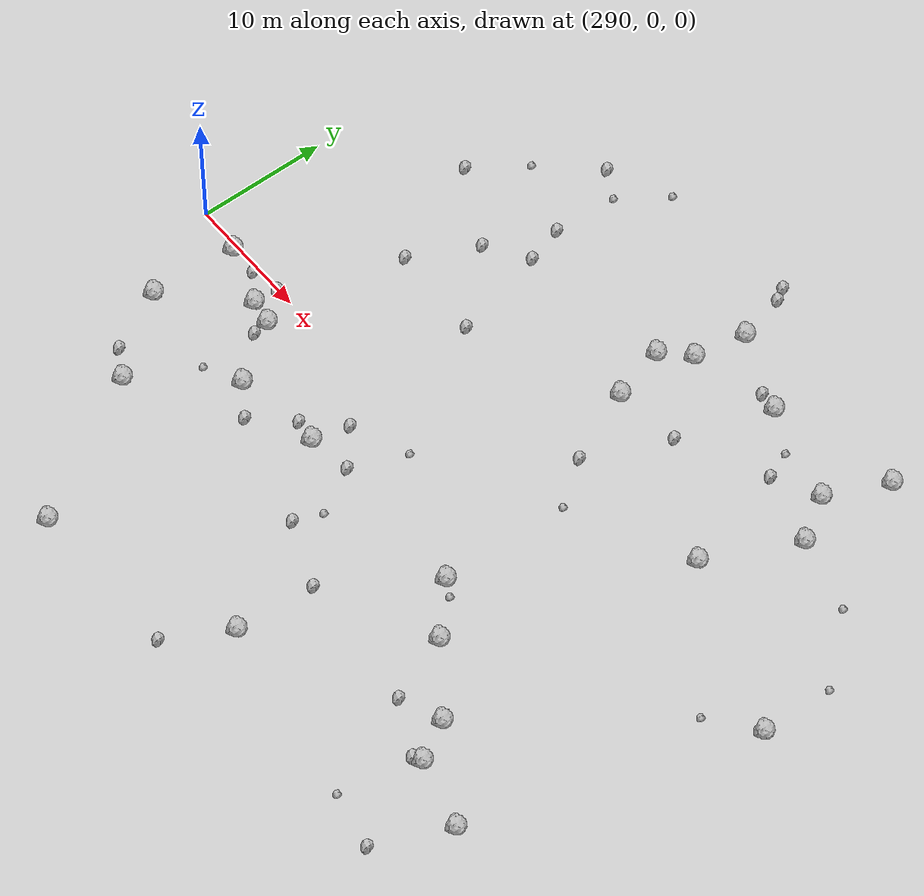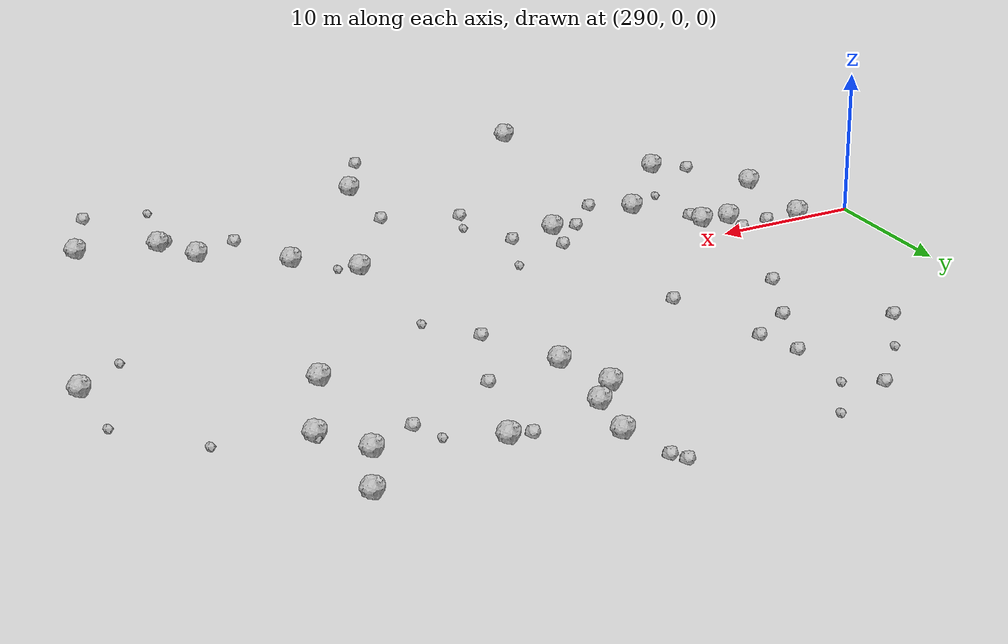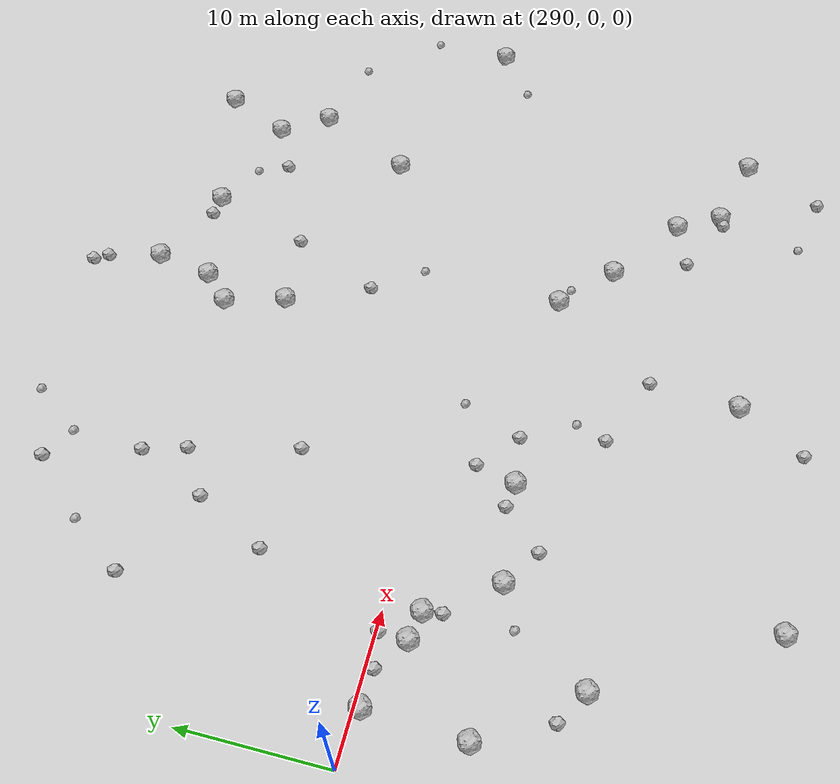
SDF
<sdf version="1.6">
 <world name="default">
  <include><uri>model://sun</uri></include>
  <model name="rock1_8_3">
   <include><uri>model://rock1</uri><pose>335.6666136029293 -15.954178938562816 0.5 0 0 0</pose></include>
  </model>
  <model name="rock1_8_4">
   <include><uri>model://rock1</uri><pose>310.4134646145215 -6.028265651254216 0.5 0 0 0</pose></include>
  </model>
  <model name="rock1_8_5">
   <include><uri>model://rock1</uri><pose>334.00836192273715 -12.984809346145191 0.5 0 0 0</pose></include>
  </model>
  <model name="rock1_8_6">
   <include><uri>model://rock1</uri><pose>304.53918171576015 -24.210401536305604 0.5 0 0 0</pose></include>
  </model>
  <model name="rock1_8_7">
   <include><uri>model://rock1</uri><pose>322.04123740355874 23.252667094722234 0.5 0 0 0</pose></include>
  </model>
  <model name="rock1_8_8">
   <include><uri>model://rock1</uri><pose>293.49518501889156 -7.1408607265561415 0.5 0 0 0</pose></include>
  </model>
  <model name="rock1_8_9">
   <include><uri>model://rock1</uri><pose>293.8379578974268 -0.4194557825747012 0.5 0 0 0</pose></include>
  </model>
  <model name="rock1_8_10">
   <include><uri>model://rock1</uri><pose>300.48617119735604 -2.396005912191491 0.5 0 0 0</pose></include>
  </model>
  <model name="rock1_8_11">
   <include><uri>model://rock1</uri><pose>328.1721205535155 20.74794014355441 0.5 0 0 0</pose></include>
  </model>
  <model name="rock1_8_12">
   <include><uri>model://rock1</uri><pose>335.8041332646007 18.5670599425996 0.5 0 0 0</pose></include>
  </model>
  <model name="rock1_8_13">
   <include><uri>model://rock1</uri><pose>347.914480547754 3.3208119104079614 0.5 0 0 0</pose></include>
  </model>
  <model name="rock1_8_14">
   <include><uri>model://rock1</uri><pose>337.89857404804786 15.312970702776042 0.5 0 0 0</pose></include>
  </model>
  <model name="rock1_8_15">
   <include><uri>model://rock1</uri><pose>328.7605475610245 -9.145805016457281 0.5 0 0 0</pose></include>
  </model>
  <model name="rock1_8_16">
   <include><uri>model://rock1</uri><pose>298.08370248366566 -13.192206783624236 0.5 0 0 0</pose></include>
  </model>
  <model name="rock1_8_17">
   <include><uri>model://rock1</uri><pose>325.2215575552092 -5.831455045808976 0.5 0 0 0</pose></include>
  </model>
  <model name="rock1_8_18">
   <include><uri>model://rock1</uri><pose>334.62132493441834 8.54561499172506 0.5 0 0 0</pose></include>
  </model>
  <model name="rock1_8_19">
   <include><uri>model://rock1</uri><pose>341.05969444690277 -17.359942002953 0.5 0 0 0</pose></include>
  </model>
  <model name="rock1_8_20">
   <include><uri>model://rock1</uri><pose>319.4129707595054 17.364490186224458 0.5 0 0 0</pose></include>
  </model>
  <model name="rock1_8_21">
   <include><uri>model://rock1</uri><pose>337.925025691945 23.135533898677515 0.5 0 0 0</pose></include>
  </model>
  <model name="rock1_8_22">
   <include><uri>model://rock1</uri><pose>298.52764459734124 -2.048492555671203 0.5 0 0 0</pose></include>
  </model>
  <model name="rock1_8_23">
   <include><uri>model://rock1</uri><pose>319.7311986374421 -19.429876372053613 0.5 0 0 0</pose></include>
  </model>
  <model name="rock1_8_24">
   <include><uri>model://rock1</uri><pose>321.27637515662536 19.268348599970402 0.5 0 0 0</pose></include>
  </model>
  <model name="rock1_8_25">
   <include><uri>model://rock1</uri><pose>303.51918156118194 -6.842801874681808 0.5 0 0 0</pose></include>
  </model>
  <model name="rock1_8_26">
   <include><uri>model://rock1</uri><pose>320.59231562671187 13.166544585929024 0.5 0 0 0</pose></include>
  </model>
  <model name="rock2_8_0">
   <include><uri>model://rock2</uri><pose>301.92998893946015 8.686437128923444 0.3 0 0 0</pose></include>
  </model>
  <model name="rock2_8_1">
   <include><uri>model://rock2</uri><pose>306.69896992833173 18.619766425760993 0.3 0 0 0</pose></include>
  </model>
  <model name="rock2_8_2">
   <include><uri>model://rock2</uri><pose>320.09358248092167 -13.264272624392586 0.3 0 0 0</pose></include>
  </model>
  <model name="rock2_8_3">
   <include><uri>model://rock2</uri><pose>298.58063065457833 -0.1237564866601879 0.3 0 0 0</pose></include>
  </model>
  <model name="rock2_8_4">
   <include><uri>model://rock2</uri><pose>300.65158411365644 -3.6601020039903496 0.3 0 0 0</pose></include>
  </model>
  <model name="rock2_8_5">
   <include><uri>model://rock2</uri><pose>325.7596406366436 13.744945371636497 0.3 0 0 0</pose></include>
  </model>
  <model name="rock2_8_6">
   <include><uri>model://rock2</uri><pose>338.57761172245415 -22.862275163656413 0.3 0 0 0</pose></include>
  </model>
  <model name="rock2_8_7">
   <include><uri>model://rock2</uri><pose>307.564866877232 15.696296366918062 0.3 0 0 0</pose></include>
  </model>
  <model name="rock2_8_8">
   <include><uri>model://rock2</uri><pose>311.0891675134499 -3.2171048711222667 0.3 0 0 0</pose></include>
  </model>
  <model name="rock2_8_9">
   <include><uri>model://rock2</uri><pose>321.070564091349 26.976942351908612 0.3 0 0 0</pose></include>
  </model>
  <model name="rock2_8_10">
   <include><uri>model://rock2</uri><pose>313.7829633358859 -5.5476418194432995 0.3 0 0 0</pose></include>
  </model>
  <model name="rock2_8_11">
   <include><uri>model://rock2</uri><pose>304.45681356767506 13.640867161434215 0.3 0 0 0</pose></include>
  </model>
  <model name="rock2_8_12">
   <include><uri>model://rock2</uri><pose>334.947129703913 -16.27591243708192 0.3 0 0 0</pose></include>
  </model>
  <model name="rock2_8_13">
   <include><uri>model://rock2</uri><pose>317.0657856115239 -24.09080870317986 0.3 0 0 0</pose></include>
  </model>
  <model name="rock2_8_14">
   <include><uri>model://rock2</uri><pose>296.28745636152877 -0.5054577600431607 0.3 0 0 0</pose></include>
  </model>
  <model name="rock2_8_15">
   <include><uri>model://rock2</uri><pose>298.234018472729 16.9792794529262 0.3 0 0 0</pose></include>
  </model>
  <model name="rock2_8_16">
   <include><uri>model://rock2</uri><pose>308.6214468374648 -5.79122141691505 0.3 0 0 0</pose></include>
  </model>
  <model name="rock2_8_17">
   <include><uri>model://rock2</uri><pose>304.6505782085524 24.863997269601455 0.3 0 0 0</pose></include>
  </model>
  <model name="rock2_8_18">
   <include><uri>model://rock2</uri><pose>314.967143866886 -11.166381016668524 0.3 0 0 0</pose></include>
  </model>
  <model name="rock2_8_19">
   <include><uri>model://rock2</uri><pose>332.3481954730158 16.873957529690003 0.3 0 0 0</pose></include>
  </model>
  <model name="rock2_8_20">
   <include><uri>model://rock2</uri><pose>306.0401195733751 -8.548349409630227 0.3 0 0 0</pose></include>
  </model>
  <model name="rock2_8_21">
   <include><uri>model://rock2</uri><pose>295.8290239141659 -11.860679233265131 0.3 0 0 0</pose></include>
  </model>
  <model name="rock2_8_22">
   <include><uri>model://rock2</uri><pose>309.385830555982 8.328151089840254 0.3 0 0 0</pose></include>
  </model>
  <model name="rock2_8_23">
   <include><uri>model://rock2</uri><pose>326.62826836787366 20.93777446851354 0.3 0 0 0</pose></include>
  </model>
  <model name="rock2_8_24">
   <include><uri>model://rock2</uri><pose>330.75823099100853 -14.191557923545199 0.3 0 0 0</pose></include>
  </model>
  <model name="rock2_8_25">
   <include><uri>model://rock2</uri><pose>320.50867886233567 27.938299738031645 0.3 0 0 0</pose></include>
  </model>
  <model name="rock2_8_26">
   <include><uri>model://rock2</uri><pose>323.0179715445598 7.535042957457776 0.3 0 0 0</pose></include>
  </model>
  <model name="rock3_8_0">
   <include><uri>model://rock3</uri><pose>325.45785188554856 4.108974307521834 0.2 0 0 0</pose></include>
  </model>
  <model name="rock3_8_1">
   <include><uri>model://rock3</uri><pose>300.9477184084159 20.8619593011785 0.2 0 0 0</pose></include>
  </model>
  <model name="rock3_8_2">
   <include><uri>model://rock3</uri><pose>348.0313033362815 8.864722646200434 0.2 0 0 0</pose></include>
  </model>
  <model name="rock3_8_3">
   <include><uri>model://rock3</uri><pose>315.7315325952396 -9.065481400065046 0.2 0 0 0</pose></include>
  </model>
  <model name="rock3_8_4">
   <include><uri>model://rock3</uri><pose>331.4436681058613 18.953908074835866 0.2 0 0 0</pose></include>
  </model>
  <model name="rock3_8_5">
   <include><uri>model://rock3</uri><pose>326.441107236191 -6.505034195823249 0.2 0 0 0</pose></include>
  </model>
  <model name="rock3_8_6">
   <include><uri>model://rock3</uri><pose>309.3551883083073 27.018091636499626 0.2 0 0 0</pose></include>
  </model>
  <model name="rock3_8_7">
   <include><uri>model://rock3</uri><pose>337.84634441358753 15.668692443465126 0.2 0 0 0</pose></include>
  </model>
  <model name="rock3_8_8">
   <include><uri>model://rock3</uri><pose>300.70905320151076 -8.209210261545422 0.2 0 0 0</pose></include>
  </model>
  <model name="rock3_8_9">
   <include><uri>model://rock3</uri><pose>334.1177665493417 -21.970921944943594 0.2 0 0 0</pose></include>
  </model>
  <model name="rock3_8_10">
   <include><uri>model://rock3</uri><pose>343.6484507903794 13.778475003308088 0.2 0 0 0</pose></include>
  </model>
  <model name="rock3_8_11">
   <include><uri>model://rock3</uri><pose>315.441836892373 -1.4117155307477773 0.2 0 0 0</pose></include>
  </model>
  <model name="rock3_8_12">
   <include><uri>model://rock3</uri><pose>344.37761518782736 0.695972394702622 0.2 0 0 0</pose></include>
  </model>
  <model name="rock3_8_13">
   <include><uri>model://rock3</uri><pose>306.89904234488245 23.569950006576576 0.2 0 0 0</pose></include>
  </model>
 </world>
</sdf>
